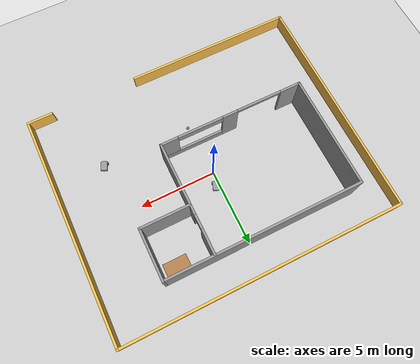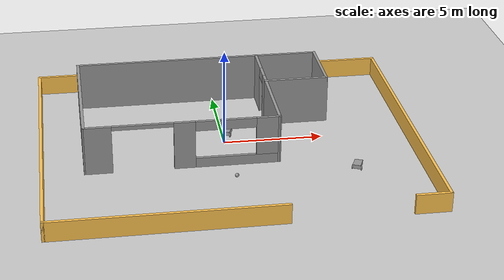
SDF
<sdf version="1.6">
 <world name="default">
  <plugin name="welcome" filename="libwelcome.so"/>
  <light name="sun" type="directional">
   <pose>0 0 10 0 -0 0</pose>
   <diffuse>0.8 0.8 0.8 1</diffuse>
   <specular>0.2 0.2 0.2 1</specular>
   <attenuation>
    <range>1000</range>
    <constant>0.9</constant>
    <linear>0.01</linear>
    <quadratic>0.001</quadratic>
   </attenuation>
   <direction>-0.5 0.1 -0.9</direction>
  </light>
  <model name="ground_plane">
   <static>1</static>
   <link name="link">
    <collision name="collision">
     <geometry><plane><normal>0 0 1</normal><size>100 100</size></plane></geometry>
     <surface>
      <contact><collide_bitmask>65535</collide_bitmask></contact>
      <friction><ode><mu>100</mu><mu2>50</mu2></ode></friction>
     </surface>
    </collision>
    <visual name="visual">
     <cast_shadows>0</cast_shadows>
     <geometry><plane><normal>0 0 1</normal><size>100 100</size></plane></geometry>
     <material>
      <script><uri>file://media/materials/scripts/gazebo.material</uri><name>Gazebo/Grey</name></script>
     </material>
    </visual>
   </link>
  </model>
  <gravity>0 0 -9.8</gravity>
  <magnetic_field>6e-06 2.3e-05 -4.2e-05</magnetic_field>
  <atmosphere type="adiabatic"/>
  <physics name="default_physics" default="0" type="ode">
   <max_step_size>0.001</max_step_size>
   <real_time_factor>1</real_time_factor>
   <real_time_update_rate>1000</real_time_update_rate>
  </physics>
  <scene><ambient>0.4 0.4 0.4 1</ambient><background>0.7 0.7 0.7 1</background><shadows>1</shadows></scene>
  <spherical_coordinates>
   <surface_model>EARTH_WGS84</surface_model>
   <latitude_deg>0</latitude_deg>
   <longitude_deg>0</longitude_deg>
   <elevation>0</elevation>
   <heading_deg>0</heading_deg>
  </spherical_coordinates>
  <model name="robot">
   <link name="link_0">
    <pose>-0.0275 1e-06 0.0875 0 -0 0</pose>
    <inertial>
     <mass>1</mass>
     <inertia>
      <ixx>0.166667</ixx>
      <ixy>0</ixy>
      <ixz>0</ixz>
      <iyy>0.166667</iyy>
      <iyz>0</iyz>
      <izz>0.166667</izz>
     </inertia>
    </inertial>
    <visual name="visual">
     <geometry><box><size>0.6 0.4 0.2</size></box></geometry>
     <material>
      <lighting>1</lighting>
      <script><uri>file://media/materials/scripts/gazebo.material</uri><name>Gazebo/Grey</name></script>
      <shader type="pixel"><normal_map>__default__</normal_map></shader>
      <ambient>0.3 0.3 0.3 1</ambient>
      <diffuse>0.7 0.7 0.7 1</diffuse>
      <specular>0.01 0.01 0.01 1</specular>
      <emissive>0 0 0 1</emissive>
     </material>
    </visual>
    <collision name="collision">
     <geometry><box><size>0.6 0.4 0.2</size></box></geometry>
     <surface>
      <friction>
       <ode><mu>1</mu><mu2>1</mu2><fdir1>0 0 0</fdir1><slip1>0</slip1><slip2>0</slip2></ode>
       <torsional>
        <coefficient>1</coefficient>
        <patch_radius>0</patch_radius>
        <surface_radius>0</surface_radius>
        <use_patch_radius>1</use_patch_radius>
        <ode><slip>0</slip></ode>
       </torsional>
      </friction>
      <bounce><restitution_coefficient>0</restitution_coefficient><threshold>1e+06</threshold></bounce>
      <contact>
       <collide_without_contact>0</collide_without_contact>
       <collide_without_contact_bitmask>1</collide_without_contact_bitmask>
       <collide_bitmask>1</collide_bitmask>
       <ode>
        <soft_cfm>0</soft_cfm>
        <soft_erp>0.2</soft_erp>
        <kp>1e+13</kp>
        <kd>1</kd>
        <max_vel>0.01</max_vel>
        <min_depth>0</min_depth>
       </ode>
       <bullet>
        <split_impulse>1</split_impulse>
        <split_impulse_penetration_threshold>-0.01</split_impulse_penetration_threshold>
        <soft_cfm>0</soft_cfm>
        <soft_erp>0.2</soft_erp>
        <kp>1e+13</kp>
        <kd>1</kd>
       </bullet>
      </contact>
     </surface>
    </collision>
   </link>
   <link name="link_1">
    <pose>0.1325 -0.225013 -0.0125 1.5707 -0 0</pose>
    <inertial>
     <mass>1</mass>
     <inertia><ixx>0.145833</ixx><ixy>0</ixy><ixz>0</ixz><iyy>0.145833</iyy><iyz>0</iyz><izz>0.125</izz></inertia>
    </inertial>
    <visual name="visual">
     <geometry><cylinder><radius>0.1</radius><length>0.05</length></cylinder></geometry>
     <material>
      <lighting>1</lighting>
      <script><uri>file://media/materials/scripts/gazebo.material</uri><name>Gazebo/Grey</name></script>
      <shader type="pixel"><normal_map>__default__</normal_map></shader>
      <ambient>0.3 0.3 0.3 1</ambient>
      <diffuse>0.7 0.7 0.7 1</diffuse>
      <specular>0.01 0.01 0.01 1</specular>
      <emissive>0 0 0 1</emissive>
     </material>
    </visual>
    <collision name="collision">
     <geometry><cylinder><radius>0.1</radius><length>0.05</length></cylinder></geometry>
     <surface>
      <friction>
       <ode><mu>1</mu><mu2>1</mu2><fdir1>0 0 0</fdir1><slip1>0</slip1><slip2>0</slip2></ode>
       <torsional>
        <coefficient>1</coefficient>
        <patch_radius>0</patch_radius>
        <surface_radius>0</surface_radius>
        <use_patch_radius>1</use_patch_radius>
        <ode><slip>0</slip></ode>
       </torsional>
      </friction>
      <bounce><restitution_coefficient>0</restitution_coefficient><threshold>1e+06</threshold></bounce>
      <contact>
       <collide_without_contact>0</collide_without_contact>
       <collide_without_contact_bitmask>1</collide_without_contact_bitmask>
       <collide_bitmask>1</collide_bitmask>
       <ode>
        <soft_cfm>0</soft_cfm>
        <soft_erp>0.2</soft_erp>
        <kp>1e+13</kp>
        <kd>1</kd>
        <max_vel>0.01</max_vel>
        <min_depth>0</min_depth>
       </ode>
       <bullet>
        <split_impulse>1</split_impulse>
        <split_impulse_penetration_threshold>-0.01</split_impulse_penetration_threshold>
        <soft_cfm>0</soft_cfm>
        <soft_erp>0.2</soft_erp>
        <kp>1e+13</kp>
        <kd>1</kd>
       </bullet>
      </contact>
     </surface>
    </collision>
   </link>
   <link name="link_1_clone">
    <pose>0.1725 0.22501 -0.0125 1.5707 -0 0</pose>
    <inertial>
     <mass>1</mass>
     <inertia><ixx>0.145833</ixx><ixy>0</ixy><ixz>0</ixz><iyy>0.145833</iyy><iyz>0</iyz><izz>0.125</izz></inertia>
    </inertial>
    <visual name="visual">
     <geometry><cylinder><radius>0.1</radius><length>0.05</length></cylinder></geometry>
     <material>
      <lighting>1</lighting>
      <script><uri>file://media/materials/scripts/gazebo.material</uri><name>Gazebo/Grey</name></script>
      <shader type="pixel"><normal_map>__default__</normal_map></shader>
      <ambient>0.3 0.3 0.3 1</ambient>
      <diffuse>0.7 0.7 0.7 1</diffuse>
      <specular>0.01 0.01 0.01 1</specular>
      <emissive>0 0 0 1</emissive>
     </material>
    </visual>
    <collision name="collision">
     <geometry><cylinder><radius>0.1</radius><length>0.05</length></cylinder></geometry>
     <surface>
      <friction>
       <ode><mu>1</mu><mu2>1</mu2><fdir1>0 0 0</fdir1><slip1>0</slip1><slip2>0</slip2></ode>
       <torsional>
        <coefficient>1</coefficient>
        <patch_radius>0</patch_radius>
        <surface_radius>0</surface_radius>
        <use_patch_radius>1</use_patch_radius>
        <ode><slip>0</slip></ode>
       </torsional>
      </friction>
      <bounce><restitution_coefficient>0</restitution_coefficient><threshold>1e+06</threshold></bounce>
      <contact>
       <collide_without_contact>0</collide_without_contact>
       <collide_without_contact_bitmask>1</collide_without_contact_bitmask>
       <collide_bitmask>1</collide_bitmask>
       <ode>
        <soft_cfm>0</soft_cfm>
        <soft_erp>0.2</soft_erp>
        <kp>1e+13</kp>
        <kd>1</kd>
        <max_vel>0.01</max_vel>
        <min_depth>0</min_depth>
       </ode>
       <bullet>
        <split_impulse>1</split_impulse>
        <split_impulse_penetration_threshold>-0.01</split_impulse_penetration_threshold>
        <soft_cfm>0</soft_cfm>
        <soft_erp>0.2</soft_erp>
        <kp>1e+13</kp>
        <kd>1</kd>
       </bullet>
      </contact>
     </surface>
    </collision>
   </link>
   <link name="link_2">
    <pose>-0.2775 1e-06 -0.0625 0 -0 0</pose>
    <inertial>
     <mass>1</mass>
     <inertia><ixx>0.1</ixx><ixy>0</ixy><ixz>0</ixz><iyy>0.1</iyy><iyz>0</iyz><izz>0.1</izz></inertia>
    </inertial>
    <visual name="visual">
     <geometry><sphere><radius>0.05</radius></sphere></geometry>
     <material>
      <lighting>1</lighting>
      <script><uri>file://media/materials/scripts/gazebo.material</uri><name>Gazebo/Grey</name></script>
      <shader type="pixel"><normal_map>__default__</normal_map></shader>
      <ambient>0.3 0.3 0.3 1</ambient>
      <diffuse>0.7 0.7 0.7 1</diffuse>
      <specular>0.01 0.01 0.01 1</specular>
      <emissive>0 0 0 1</emissive>
     </material>
    </visual>
    <collision name="collision">
     <geometry><sphere><radius>0.05</radius></sphere></geometry>
     <surface>
      <friction>
       <ode><mu>1</mu><mu2>1</mu2><fdir1>0 0 0</fdir1><slip1>0</slip1><slip2>0</slip2></ode>
       <torsional>
        <coefficient>1</coefficient>
        <patch_radius>0</patch_radius>
        <surface_radius>0</surface_radius>
        <use_patch_radius>1</use_patch_radius>
        <ode><slip>0</slip></ode>
       </torsional>
      </friction>
      <bounce><restitution_coefficient>0</restitution_coefficient><threshold>1e+06</threshold></bounce>
      <contact>
       <collide_without_contact>0</collide_without_contact>
       <collide_without_contact_bitmask>1</collide_without_contact_bitmask>
       <collide_bitmask>1</collide_bitmask>
       <ode>
        <soft_cfm>0</soft_cfm>
        <soft_erp>0.2</soft_erp>
        <kp>1e+13</kp>
        <kd>1</kd>
        <max_vel>0.01</max_vel>
        <min_depth>0</min_depth>
       </ode>
       <bullet>
        <split_impulse>1</split_impulse>
        <split_impulse_penetration_threshold>-0.01</split_impulse_penetration_threshold>
        <soft_cfm>0</soft_cfm>
        <soft_erp>0.2</soft_erp>
        <kp>1e+13</kp>
        <kd>1</kd>
       </bullet>
      </contact>
     </surface>
    </collision>
   </link>
   <joint name="link_0_JOINT_0" type="revolute">
    <parent>link_0</parent>
    <child>link_1</child>
    <axis>
     <xyz>0 0 1</xyz>
     <use_parent_model_frame>0</use_parent_model_frame>
     <limit>
      <lower>-1.79769e+308</lower>
      <upper>1.79769e+308</upper>
      <effort>-1</effort>
      <velocity>-1</velocity>
     </limit>
     <dynamics>
      <spring_reference>0</spring_reference>
      <spring_stiffness>0</spring_stiffness>
      <damping>0</damping>
     </dynamics>
    </axis>
    <physics>
     <ode><limit><cfm>0</cfm><erp>0.2</erp></limit><suspension><cfm>0</cfm><erp>0.2</erp></suspension></ode>
    </physics>
   </joint>
   <joint name="link_0_JOINT_1" type="revolute">
    <parent>link_0</parent>
    <child>link_1_clone</child>
    <axis>
     <xyz>0 0 1</xyz>
     <use_parent_model_frame>0</use_parent_model_frame>
     <limit>
      <lower>-1.79769e+308</lower>
      <upper>1.79769e+308</upper>
      <effort>-1</effort>
      <velocity>-1</velocity>
     </limit>
     <dynamics>
      <spring_reference>0</spring_reference>
      <spring_stiffness>0</spring_stiffness>
      <damping>0</damping>
     </dynamics>
    </axis>
    <physics>
     <ode><limit><cfm>0</cfm><erp>0.2</erp></limit><suspension><cfm>0</cfm><erp>0.2</erp></suspension></ode>
    </physics>
   </joint>
   <joint name="link_0_JOINT_2" type="ball">
    <parent>link_0</parent>
    <child>link_2</child>
    <physics>
     <ode><limit><cfm>0</cfm><erp>0.2</erp></limit><suspension><cfm>0</cfm><erp>0.2</erp></suspension></ode>
    </physics>
   </joint>
   <static>0</static>
   <pose>0.234127 0.839547 0.112499 6e-06 -1e-05 -1.99596</pose>
  </model>
  <model name="robot_0">
   <link name="link_0">
    <pose>-0.0275 1e-06 0.0875 0 -0 0</pose>
    <inertial>
     <mass>1</mass>
     <inertia>
      <ixx>0.166667</ixx>
      <ixy>0</ixy>
      <ixz>0</ixz>
      <iyy>0.166667</iyy>
      <iyz>0</iyz>
      <izz>0.166667</izz>
     </inertia>
    </inertial>
    <visual name="visual">
     <geometry><box><size>0.6 0.4 0.2</size></box></geometry>
     <material>
      <lighting>1</lighting>
      <script><uri>file://media/materials/scripts/gazebo.material</uri><name>Gazebo/Grey</name></script>
      <shader type="pixel"><normal_map>__default__</normal_map></shader>
      <ambient>0.3 0.3 0.3 1</ambient>
      <diffuse>0.7 0.7 0.7 1</diffuse>
      <specular>0.01 0.01 0.01 1</specular>
      <emissive>0 0 0 1</emissive>
     </material>
    </visual>
    <collision name="collision">
     <geometry><box><size>0.6 0.4 0.2</size></box></geometry>
     <surface>
      <friction>
       <ode><mu>1</mu><mu2>1</mu2><fdir1>0 0 0</fdir1><slip1>0</slip1><slip2>0</slip2></ode>
       <torsional>
        <coefficient>1</coefficient>
        <patch_radius>0</patch_radius>
        <surface_radius>0</surface_radius>
        <use_patch_radius>1</use_patch_radius>
        <ode><slip>0</slip></ode>
       </torsional>
      </friction>
      <bounce><restitution_coefficient>0</restitution_coefficient><threshold>1e+06</threshold></bounce>
      <contact>
       <collide_without_contact>0</collide_without_contact>
       <collide_without_contact_bitmask>1</collide_without_contact_bitmask>
       <collide_bitmask>1</collide_bitmask>
       <ode>
        <soft_cfm>0</soft_cfm>
        <soft_erp>0.2</soft_erp>
        <kp>1e+13</kp>
        <kd>1</kd>
        <max_vel>0.01</max_vel>
        <min_depth>0</min_depth>
       </ode>
       <bullet>
        <split_impulse>1</split_impulse>
        <split_impulse_penetration_threshold>-0.01</split_impulse_penetration_threshold>
        <soft_cfm>0</soft_cfm>
        <soft_erp>0.2</soft_erp>
        <kp>1e+13</kp>
        <kd>1</kd>
       </bullet>
      </contact>
     </surface>
    </collision>
   </link>
   <link name="link_1">
    <pose>0.1325 -0.225013 -0.0125 1.5707 -0 0</pose>
    <inertial>
     <mass>1</mass>
     <inertia><ixx>0.145833</ixx><ixy>0</ixy><ixz>0</ixz><iyy>0.145833</iyy><iyz>0</iyz><izz>0.125</izz></inertia>
    </inertial>
    <visual name="visual">
     <geometry><cylinder><radius>0.1</radius><length>0.05</length></cylinder></geometry>
     <material>
      <lighting>1</lighting>
      <script><uri>file://media/materials/scripts/gazebo.material</uri><name>Gazebo/Grey</name></script>
      <shader type="pixel"><normal_map>__default__</normal_map></shader>
      <ambient>0.3 0.3 0.3 1</ambient>
      <diffuse>0.7 0.7 0.7 1</diffuse>
      <specular>0.01 0.01 0.01 1</specular>
      <emissive>0 0 0 1</emissive>
     </material>
    </visual>
    <collision name="collision">
     <geometry><cylinder><radius>0.1</radius><length>0.05</length></cylinder></geometry>
     <surface>
      <friction>
       <ode><mu>1</mu><mu2>1</mu2><fdir1>0 0 0</fdir1><slip1>0</slip1><slip2>0</slip2></ode>
       <torsional>
        <coefficient>1</coefficient>
        <patch_radius>0</patch_radius>
        <surface_radius>0</surface_radius>
        <use_patch_radius>1</use_patch_radius>
        <ode><slip>0</slip></ode>
       </torsional>
      </friction>
      <bounce><restitution_coefficient>0</restitution_coefficient><threshold>1e+06</threshold></bounce>
      <contact>
       <collide_without_contact>0</collide_without_contact>
       <collide_without_contact_bitmask>1</collide_without_contact_bitmask>
       <collide_bitmask>1</collide_bitmask>
       <ode>
        <soft_cfm>0</soft_cfm>
        <soft_erp>0.2</soft_erp>
        <kp>1e+13</kp>
        <kd>1</kd>
        <max_vel>0.01</max_vel>
        <min_depth>0</min_depth>
       </ode>
       <bullet>
        <split_impulse>1</split_impulse>
        <split_impulse_penetration_threshold>-0.01</split_impulse_penetration_threshold>
        <soft_cfm>0</soft_cfm>
        <soft_erp>0.2</soft_erp>
        <kp>1e+13</kp>
        <kd>1</kd>
       </bullet>
      </contact>
     </surface>
    </collision>
   </link>
   <link name="link_1_clone">
    <pose>0.1725 0.22501 -0.0125 1.5707 -0 0</pose>
    <inertial>
     <mass>1</mass>
     <inertia><ixx>0.145833</ixx><ixy>0</ixy><ixz>0</ixz><iyy>0.145833</iyy><iyz>0</iyz><izz>0.125</izz></inertia>
    </inertial>
    <visual name="visual">
     <geometry><cylinder><radius>0.1</radius><length>0.05</length></cylinder></geometry>
     <material>
      <lighting>1</lighting>
      <script><uri>file://media/materials/scripts/gazebo.material</uri><name>Gazebo/Grey</name></script>
      <shader type="pixel"><normal_map>__default__</normal_map></shader>
      <ambient>0.3 0.3 0.3 1</ambient>
      <diffuse>0.7 0.7 0.7 1</diffuse>
      <specular>0.01 0.01 0.01 1</specular>
      <emissive>0 0 0 1</emissive>
     </material>
    </visual>
    <collision name="collision">
     <geometry><cylinder><radius>0.1</radius><length>0.05</length></cylinder></geometry>
     <surface>
      <friction>
       <ode><mu>1</mu><mu2>1</mu2><fdir1>0 0 0</fdir1><slip1>0</slip1><slip2>0</slip2></ode>
       <torsional>
        <coefficient>1</coefficient>
        <patch_radius>0</patch_radius>
        <surface_radius>0</surface_radius>
        <use_patch_radius>1</use_patch_radius>
        <ode><slip>0</slip></ode>
       </torsional>
      </friction>
      <bounce><restitution_coefficient>0</restitution_coefficient><threshold>1e+06</threshold></bounce>
      <contact>
       <collide_without_contact>0</collide_without_contact>
       <collide_without_contact_bitmask>1</collide_without_contact_bitmask>
       <collide_bitmask>1</collide_bitmask>
       <ode>
        <soft_cfm>0</soft_cfm>
        <soft_erp>0.2</soft_erp>
        <kp>1e+13</kp>
        <kd>1</kd>
        <max_vel>0.01</max_vel>
        <min_depth>0</min_depth>
       </ode>
       <bullet>
        <split_impulse>1</split_impulse>
        <split_impulse_penetration_threshold>-0.01</split_impulse_penetration_threshold>
        <soft_cfm>0</soft_cfm>
        <soft_erp>0.2</soft_erp>
        <kp>1e+13</kp>
        <kd>1</kd>
       </bullet>
      </contact>
     </surface>
    </collision>
   </link>
   <link name="link_2">
    <pose>-0.2775 1e-06 -0.0625 0 -0 0</pose>
    <inertial>
     <mass>1</mass>
     <inertia><ixx>0.1</ixx><ixy>0</ixy><ixz>0</ixz><iyy>0.1</iyy><iyz>0</iyz><izz>0.1</izz></inertia>
    </inertial>
    <visual name="visual">
     <geometry><sphere><radius>0.05</radius></sphere></geometry>
     <material>
      <lighting>1</lighting>
      <script><uri>file://media/materials/scripts/gazebo.material</uri><name>Gazebo/Grey</name></script>
      <shader type="pixel"><normal_map>__default__</normal_map></shader>
      <ambient>0.3 0.3 0.3 1</ambient>
      <diffuse>0.7 0.7 0.7 1</diffuse>
      <specular>0.01 0.01 0.01 1</specular>
      <emissive>0 0 0 1</emissive>
     </material>
    </visual>
    <collision name="collision">
     <geometry><sphere><radius>0.05</radius></sphere></geometry>
     <surface>
      <friction>
       <ode><mu>1</mu><mu2>1</mu2><fdir1>0 0 0</fdir1><slip1>0</slip1><slip2>0</slip2></ode>
       <torsional>
        <coefficient>1</coefficient>
        <patch_radius>0</patch_radius>
        <surface_radius>0</surface_radius>
        <use_patch_radius>1</use_patch_radius>
        <ode><slip>0</slip></ode>
       </torsional>
      </friction>
      <bounce><restitution_coefficient>0</restitution_coefficient><threshold>1e+06</threshold></bounce>
      <contact>
       <collide_without_contact>0</collide_without_contact>
       <collide_without_contact_bitmask>1</collide_without_contact_bitmask>
       <collide_bitmask>1</collide_bitmask>
       <ode>
        <soft_cfm>0</soft_cfm>
        <soft_erp>0.2</soft_erp>
        <kp>1e+13</kp>
        <kd>1</kd>
        <max_vel>0.01</max_vel>
        <min_depth>0</min_depth>
       </ode>
       <bullet>
        <split_impulse>1</split_impulse>
        <split_impulse_penetration_threshold>-0.01</split_impulse_penetration_threshold>
        <soft_cfm>0</soft_cfm>
        <soft_erp>0.2</soft_erp>
        <kp>1e+13</kp>
        <kd>1</kd>
       </bullet>
      </contact>
     </surface>
    </collision>
   </link>
   <joint name="link_0_JOINT_0" type="revolute">
    <parent>link_0</parent>
    <child>link_1</child>
    <axis>
     <xyz>0 0 1</xyz>
     <use_parent_model_frame>0</use_parent_model_frame>
     <limit>
      <lower>-1.79769e+308</lower>
      <upper>1.79769e+308</upper>
      <effort>-1</effort>
      <velocity>-1</velocity>
     </limit>
     <dynamics>
      <spring_reference>0</spring_reference>
      <spring_stiffness>0</spring_stiffness>
      <damping>0</damping>
     </dynamics>
    </axis>
    <physics>
     <ode><limit><cfm>0</cfm><erp>0.2</erp></limit><suspension><cfm>0</cfm><erp>0.2</erp></suspension></ode>
    </physics>
   </joint>
   <joint name="link_0_JOINT_1" type="revolute">
    <parent>link_0</parent>
    <child>link_1_clone</child>
    <axis>
     <xyz>0 0 1</xyz>
     <use_parent_model_frame>0</use_parent_model_frame>
     <limit>
      <lower>-1.79769e+308</lower>
      <upper>1.79769e+308</upper>
      <effort>-1</effort>
      <velocity>-1</velocity>
     </limit>
     <dynamics>
      <spring_reference>0</spring_reference>
      <spring_stiffness>0</spring_stiffness>
      <damping>0</damping>
     </dynamics>
    </axis>
    <physics>
     <ode><limit><cfm>0</cfm><erp>0.2</erp></limit><suspension><cfm>0</cfm><erp>0.2</erp></suspension></ode>
    </physics>
   </joint>
   <joint name="link_0_JOINT_2" type="ball">
    <parent>link_0</parent>
    <child>link_2</child>
    <physics>
     <ode><limit><cfm>0</cfm><erp>0.2</erp></limit><suspension><cfm>0</cfm><erp>0.2</erp></suspension></ode>
    </physics>
   </joint>
   <static>0</static>
   <pose>6.08637 -3.51238 0.112501 -3e-06 -5e-06 -1.99115</pose>
  </model>
  <model name="building_0">
   <pose>0.079 -0.505 0 0 -0 0</pose>
   <link name="Wall_10">
    <collision name="Wall_10_Collision">
     <geometry><box><size>3.35 0.15 2.5</size></box></geometry>
     <pose>0 0 1.25 0 -0 0</pose>
    </collision>
    <visual name="Wall_10_Visual">
     <pose>0 0 1.25 0 -0 0</pose>
     <geometry><box><size>3.35 0.15 2.5</size></box></geometry>
     <material>
      <script><uri>file://media/materials/scripts/gazebo.material</uri><name>Gazebo/Grey</name></script>
      <ambient>1 1 1 1</ambient>
     </material>
     <meta><layer>0</layer></meta>
    </visual>
    <pose>5.489 3.905 0 0 -0 1.5708</pose>
   </link>
   <link name="Wall_11">
    <collision name="Wall_11_Collision">
     <geometry><box><size>12.85 0.15 2.5</size></box></geometry>
     <pose>0 0 1.25 0 -0 0</pose>
    </collision>
    <visual name="Wall_11_Visual">
     <pose>0 0 1.25 0 -0 0</pose>
     <geometry><box><size>12.85 0.15 2.5</size></box></geometry>
     <material>
      <script><uri>file://media/materials/scripts/gazebo.material</uri><name>Gazebo/Grey</name></script>
      <ambient>1 1 1 1</ambient>
     </material>
     <meta><layer>0</layer></meta>
    </visual>
    <pose>-0.861 5.505 0 0 -0 3.14159</pose>
   </link>
   <link name="Wall_13">
    <pose>2.321 3.884 0 0 -0 1.5708</pose>
    <visual name="Wall_13_Visual_0">
     <pose>-1.28726 0 1.25 0 -0 0</pose>
     <geometry><box><size>0.733951 0.15 2.5</size></box></geometry>
     <material>
      <script><uri>file://media/materials/scripts/gazebo.material</uri><name>Gazebo/Grey</name></script>
      <ambient>1 1 1 1</ambient>
     </material>
     <meta><layer>0</layer></meta>
    </visual>
    <collision name="Wall_13_Collision_0">
     <geometry><box><size>0.733951 0.15 2.5</size></box></geometry>
     <pose>-1.28726 0 1.25 0 -0 0</pose>
    </collision>
    <visual name="Wall_13_Visual_1">
     <pose>0.816975 0 1.25 0 -0 0</pose>
     <geometry><box><size>1.67452 0.15 2.5</size></box></geometry>
     <material>
      <script><uri>file://media/materials/scripts/gazebo.material</uri><name>Gazebo/Grey</name></script>
      <ambient>1 1 1 1</ambient>
     </material>
     <meta><layer>0</layer></meta>
    </visual>
    <collision name="Wall_13_Collision_1">
     <geometry><box><size>1.67452 0.15 2.5</size></box></geometry>
     <pose>0.816975 0 1.25 0 -0 0</pose>
    </collision>
    <visual name="Wall_13_Visual_2">
     <pose>-0.470286 0 2.25 0 -0 0</pose>
     <geometry><box><size>0.9 0.15 0.5</size></box></geometry>
     <material>
      <script><uri>file://media/materials/scripts/gazebo.material</uri><name>Gazebo/Grey</name></script>
      <ambient>1 1 1 1</ambient>
     </material>
     <meta><layer>0</layer></meta>
    </visual>
    <collision name="Wall_13_Collision_2">
     <geometry><box><size>0.9 0.15 0.5</size></box></geometry>
     <pose>-0.470286 0 2.25 0 -0 0</pose>
    </collision>
   </link>
   <link name="Wall_16">
    <collision name="Wall_16_Collision">
     <geometry><box><size>18.75 0.15 1</size></box></geometry>
     <pose>0 0 0.5 0 -0 0</pose>
    </collision>
    <visual name="Wall_16_Visual">
     <pose>0 0 0.5 0 -0 0</pose>
     <geometry><box><size>18.75 0.15 1</size></box></geometry>
     <material>
      <script><uri>file://media/materials/scripts/gazebo.material</uri><name>Gazebo/Grey</name></script>
      <ambient>1 0.764706 0.305882 1</ambient>
     </material>
     <meta><layer>0</layer></meta>
    </visual>
    <pose>0 7.55 0 0 -0 0</pose>
   </link>
   <link name="Wall_17">
    <collision name="Wall_17_Collision">
     <geometry><box><size>15.25 0.15 1</size></box></geometry>
     <pose>0 0 0.5 0 -0 0</pose>
    </collision>
    <visual name="Wall_17_Visual">
     <pose>0 0 0.5 0 -0 0</pose>
     <geometry><box><size>15.25 0.15 1</size></box></geometry>
     <material>
      <script><uri>file://media/materials/scripts/gazebo.material</uri><name>Gazebo/Grey</name></script>
      <ambient>1 0.764706 0.305882 1</ambient>
     </material>
     <meta><layer>0</layer></meta>
    </visual>
    <pose>9.3 0 0 0 0 -1.5708</pose>
   </link>
   <link name="Wall_19">
    <collision name="Wall_19_Collision">
     <geometry><box><size>15.25 0.15 1</size></box></geometry>
     <pose>0 0 0.5 0 -0 0</pose>
    </collision>
    <visual name="Wall_19_Visual">
     <pose>0 0 0.5 0 -0 0</pose>
     <geometry><box><size>15.25 0.15 1</size></box></geometry>
     <material>
      <script><uri>file://media/materials/scripts/gazebo.material</uri><name>Gazebo/Grey</name></script>
      <ambient>1 0.764706 0.305882 1</ambient>
     </material>
     <meta><layer>0</layer></meta>
    </visual>
    <pose>-9.3 0 0 0 -0 1.5708</pose>
   </link>
   <link name="Wall_21">
    <collision name="Wall_21_Collision">
     <geometry><box><size>11.25 0.15 1</size></box></geometry>
     <pose>0 0 0.5 0 -0 0</pose>
    </collision>
    <visual name="Wall_21_Visual">
     <pose>0 0 0.5 0 -0 0</pose>
     <geometry><box><size>11.25 0.15 1</size></box></geometry>
     <material>
      <script><uri>file://media/materials/scripts/gazebo.material</uri><name>Gazebo/Grey</name></script>
      <ambient>1 0.764706 0.305882 1</ambient>
     </material>
     <meta><layer>0</layer></meta>
    </visual>
    <pose>-3.75 -7.55 0 0 -0 0</pose>
   </link>
   <link name="Wall_23">
    <collision name="Wall_23_Collision">
     <geometry><box><size>1.75 0.15 1</size></box></geometry>
     <pose>0 0 0.5 0 -0 0</pose>
    </collision>
    <visual name="Wall_23_Visual">
     <pose>0 0 0.5 0 -0 0</pose>
     <geometry><box><size>1.75 0.15 1</size></box></geometry>
     <material>
      <script><uri>file://media/materials/scripts/gazebo.material</uri><name>Gazebo/Grey</name></script>
      <ambient>1 0.764706 0.305882 1</ambient>
     </material>
     <meta><layer>0</layer></meta>
    </visual>
    <pose>8.5 -7.55 0 0 -0 3.14159</pose>
   </link>
   <link name="Wall_6">
    <collision name="Wall_6_Collision">
     <geometry><box><size>7.41574 0.15 2.5</size></box></geometry>
     <pose>0 0 1.25 0 -0 0</pose>
    </collision>
    <visual name="Wall_6_Visual">
     <pose>0 0 1.25 0 -0 0</pose>
     <geometry><box><size>7.41574 0.15 2.5</size></box></geometry>
     <material>
      <script><uri>file://media/materials/scripts/gazebo.material</uri><name>Gazebo/Grey</name></script>
      <ambient>1 1 1 1</ambient>
     </material>
     <meta><layer>0</layer></meta>
    </visual>
    <pose>-7.21096 1.87213 0 0 0 -1.57079</pose>
   </link>
   <link name="Wall_7">
    <pose>-2.44496 -1.76737 0 0 0 -0.001391</pose>
    <visual name="Wall_7_Visual_0">
     <pose>-4.13426 0 1.25 0 -0 0</pose>
     <geometry><box><size>1.41341 0.15 2.5</size></box></geometry>
     <material>
      <script><uri>file://media/materials/scripts/gazebo.material</uri><name>Gazebo/Grey</name></script>
      <ambient>1 1 1 1</ambient>
     </material>
     <meta><layer>0</layer></meta>
    </visual>
    <collision name="Wall_7_Collision_0">
     <geometry><box><size>1.41341 0.15 2.5</size></box></geometry>
     <pose>-4.13426 0 1.25 0 -0 0</pose>
    </collision>
    <visual name="Wall_7_Visual_1">
     <pose>0.09879 0 1.25 0 -0 0</pose>
     <geometry><box><size>1.05268 0.15 2.5</size></box></geometry>
     <material>
      <script><uri>file://media/materials/scripts/gazebo.material</uri><name>Gazebo/Grey</name></script>
      <ambient>1 1 1 1</ambient>
     </material>
     <meta><layer>0</layer></meta>
    </visual>
    <collision name="Wall_7_Collision_1">
     <geometry><box><size>1.05268 0.15 2.5</size></box></geometry>
     <pose>0.09879 0 1.25 0 -0 0</pose>
    </collision>
    <visual name="Wall_7_Visual_2">
     <pose>2.73305 0 0.25 0 -0 0</pose>
     <geometry><box><size>4.21584 0.15 0.5</size></box></geometry>
     <material>
      <script><uri>file://media/materials/scripts/gazebo.material</uri><name>Gazebo/Grey</name></script>
      <ambient>1 1 1 1</ambient>
     </material>
     <meta><layer>0</layer></meta>
    </visual>
    <collision name="Wall_7_Collision_2">
     <geometry><box><size>4.21584 0.15 0.5</size></box></geometry>
     <pose>2.73305 0 0.25 0 -0 0</pose>
    </collision>
    <visual name="Wall_7_Visual_3">
     <pose>4.23305 0 1.5 0 -0 0</pose>
     <geometry><box><size>1.21583 0.15 2</size></box></geometry>
     <material>
      <script><uri>file://media/materials/scripts/gazebo.material</uri><name>Gazebo/Grey</name></script>
      <ambient>1 1 1 1</ambient>
     </material>
     <meta><layer>0</layer></meta>
    </visual>
    <collision name="Wall_7_Collision_3">
     <geometry><box><size>1.21583 0.15 2</size></box></geometry>
     <pose>4.23305 0 1.5 0 -0 0</pose>
    </collision>
    <visual name="Wall_7_Visual_4">
     <pose>2.12513 0 2.25 0 -0 0</pose>
     <geometry><box><size>3 0.15 0.5</size></box></geometry>
     <material>
      <script><uri>file://media/materials/scripts/gazebo.material</uri><name>Gazebo/Grey</name></script>
      <ambient>1 1 1 1</ambient>
     </material>
     <meta><layer>0</layer></meta>
    </visual>
    <collision name="Wall_7_Collision_4">
     <geometry><box><size>3 0.15 0.5</size></box></geometry>
     <pose>2.12513 0 2.25 0 -0 0</pose>
    </collision>
    <visual name="Wall_7_Visual_5">
     <pose>-1.92755 0 2.4 0 -0 0</pose>
     <geometry><box><size>3 0.15 0.2</size></box></geometry>
     <material>
      <script><uri>file://media/materials/scripts/gazebo.material</uri><name>Gazebo/Grey</name></script>
      <ambient>1 1 1 1</ambient>
     </material>
     <meta><layer>0</layer></meta>
    </visual>
    <collision name="Wall_7_Collision_5">
     <geometry><box><size>3 0.15 0.2</size></box></geometry>
     <pose>-1.92755 0 2.4 0 -0 0</pose>
    </collision>
   </link>
   <link name="Wall_8">
    <collision name="Wall_8_Collision">
     <geometry><box><size>4.22905 0.15 2.5</size></box></geometry>
     <pose>0 0 1.25 0 -0 0</pose>
    </collision>
    <visual name="Wall_8_Visual">
     <pose>0 0 1.25 0 -0 0</pose>
     <geometry><box><size>4.22905 0.15 2.5</size></box></geometry>
     <material>
      <script><uri>file://media/materials/scripts/gazebo.material</uri><name>Gazebo/Grey</name></script>
      <ambient>1 1 1 1</ambient>
     </material>
     <meta><layer>0</layer></meta>
    </visual>
    <pose>2.321 0.2655 0 0 -0 1.5708</pose>
   </link>
   <link name="Wall_9">
    <collision name="Wall_9_Collision">
     <geometry><box><size>3.318 0.15 2.5</size></box></geometry>
     <pose>0 0 1.25 0 -0 0</pose>
    </collision>
    <visual name="Wall_9_Visual">
     <pose>0 0 1.25 0 -0 0</pose>
     <geometry><box><size>3.318 0.15 2.5</size></box></geometry>
     <material>
      <script><uri>file://media/materials/scripts/gazebo.material</uri><name>Gazebo/Grey</name></script>
      <ambient>1 1 1 1</ambient>
     </material>
     <meta><layer>0</layer></meta>
    </visual>
    <pose>3.905 2.305 0 0 -0 0</pose>
   </link>
   <static>1</static>
  </model>
  <model name="table">
   <static>1</static>
   <link name="link">
    <collision name="surface">
     <pose>0 0 1 0 -0 0</pose>
     <geometry><box><size>1.5 0.8 0.03</size></box></geometry>
     <surface><friction><ode><mu>0.6</mu><mu2>0.6</mu2></ode></friction></surface>
    </collision>
    <visual name="visual1">
     <pose>0 0 1 0 -0 0</pose>
     <geometry><box><size>1.5 0.8 0.03</size></box></geometry>
     <material>
      <script><uri>file://media/materials/scripts/gazebo.material</uri><name>Gazebo/Wood</name></script>
     </material>
    </visual>
    <collision name="front_left_leg">
     <pose>0.68 0.38 0.5 0 -0 0</pose>
     <geometry><cylinder><radius>0.02</radius><length>1</length></cylinder></geometry>
    </collision>
    <visual name="front_left_leg">
     <pose>0.68 0.38 0.5 0 -0 0</pose>
     <geometry><cylinder><radius>0.02</radius><length>1</length></cylinder></geometry>
     <material>
      <script><uri>file://media/materials/scripts/gazebo.material</uri><name>Gazebo/Grey</name></script>
     </material>
    </visual>
    <collision name="front_right_leg">
     <pose>0.68 -0.38 0.5 0 -0 0</pose>
     <geometry><cylinder><radius>0.02</radius><length>1</length></cylinder></geometry>
    </collision>
    <visual name="front_right_leg">
     <pose>0.68 -0.38 0.5 0 -0 0</pose>
     <geometry><cylinder><radius>0.02</radius><length>1</length></cylinder></geometry>
     <material>
      <script><uri>file://media/materials/scripts/gazebo.material</uri><name>Gazebo/Grey</name></script>
     </material>
    </visual>
    <collision name="back_right_leg">
     <pose>-0.68 -0.38 0.5 0 -0 0</pose>
     <geometry><cylinder><radius>0.02</radius><length>1</length></cylinder></geometry>
    </collision>
    <visual name="back_right_leg">
     <pose>-0.68 -0.38 0.5 0 -0 0</pose>
     <geometry><cylinder><radius>0.02</radius><length>1</length></cylinder></geometry>
     <material>
      <script><uri>file://media/materials/scripts/gazebo.material</uri><name>Gazebo/Grey</name></script>
     </material>
    </visual>
    <collision name="back_left_leg">
     <pose>-0.68 0.38 0.5 0 -0 0</pose>
     <geometry><cylinder><radius>0.02</radius><length>1</length></cylinder></geometry>
    </collision>
    <visual name="back_left_leg">
     <pose>-0.68 0.38 0.5 0 -0 0</pose>
     <geometry><cylinder><radius>0.02</radius><length>1</length></cylinder></geometry>
     <material>
      <script><uri>file://media/materials/scripts/gazebo.material</uri><name>Gazebo/Grey</name></script>
     </material>
    </visual>
   </link>
   <pose>4.53922 4.37489 0 0 -0 0</pose>
  </model>
  <model name="my_ball">
   <link name="link_0">
    <inertial>
     <mass>1</mass>
     <inertia><ixx>0.1</ixx><ixy>0</ixy><ixz>0</ixz><iyy>0.1</iyy><iyz>0</iyz><izz>0.1</izz></inertia>
    </inertial>
    <visual name="visual">
     <geometry><sphere><radius>0.1</radius></sphere></geometry>
     <material>
      <lighting>1</lighting>
      <script><uri>file://media/materials/scripts/gazebo.material</uri><name>Gazebo/Grey</name></script>
      <shader type="pixel"><normal_map>__default__</normal_map></shader>
      <ambient>1 1 1 1</ambient>
      <diffuse>1 1 1 1</diffuse>
      <specular>1 1 1 1</specular>
      <emissive>1 1 1 1</emissive>
     </material>
    </visual>
    <collision name="collision">
     <geometry><sphere><radius>0.1</radius></sphere></geometry>
     <surface>
      <friction>
       <ode><mu>1</mu><mu2>1</mu2><fdir1>0 0 0</fdir1><slip1>0</slip1><slip2>0</slip2></ode>
       <torsional>
        <coefficient>1</coefficient>
        <patch_radius>0</patch_radius>
        <surface_radius>0</surface_radius>
        <use_patch_radius>1</use_patch_radius>
        <ode><slip>0</slip></ode>
       </torsional>
      </friction>
      <bounce><restitution_coefficient>0</restitution_coefficient><threshold>1e+06</threshold></bounce>
      <contact>
       <collide_without_contact>0</collide_without_contact>
       <collide_without_contact_bitmask>1</collide_without_contact_bitmask>
       <collide_bitmask>1</collide_bitmask>
       <ode>
        <soft_cfm>0</soft_cfm>
        <soft_erp>0.2</soft_erp>
        <kp>1e+13</kp>
        <kd>1</kd>
        <max_vel>0.01</max_vel>
        <min_depth>0</min_depth>
       </ode>
       <bullet>
        <split_impulse>1</split_impulse>
        <split_impulse_penetration_threshold>-0.01</split_impulse_penetration_threshold>
        <soft_cfm>0</soft_cfm>
        <soft_erp>0.2</soft_erp>
        <kp>1e+13</kp>
        <kd>1</kd>
       </bullet>
      </contact>
     </surface>
    </collision>
   </link>
   <static>0</static>
   <pose>0.116827 -3.56375 0.1 0 -0 0</pose>
  </model>
 </world>
</sdf>
